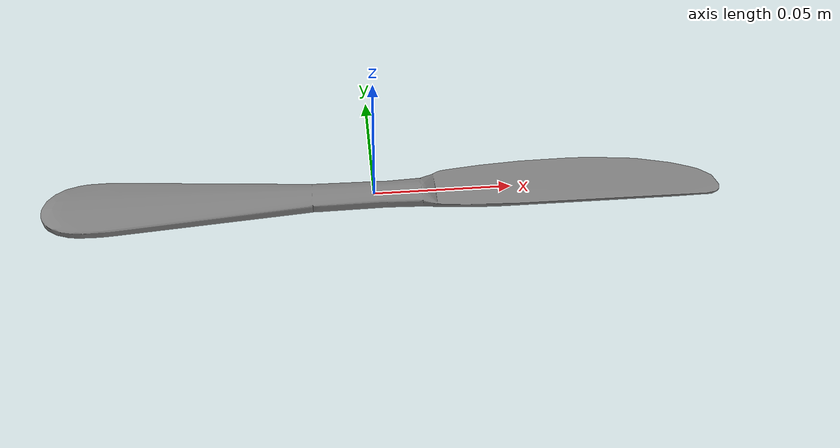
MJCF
<mujoco model="knife_CommonCutlery12Pieces_vk0074_DessertKnife_subd1_M">
  <default>
    <default class="visual">
      <geom group="2" type="mesh" contype="0" conaffinity="0" />
    </default>
    <default class="collision">
      <geom group="3" type="mesh" />
    </default>
  </default>
  <asset>
    <mesh file="knife_CommonCutlery12Pieces_vk0074_DessertKnife_subd1_M.stl" />
    <mesh file="knife_CommonCutlery12Pieces_vk0074_DessertKnife_subd1_M_collision_0.stl" />
    <mesh file="knife_CommonCutlery12Pieces_vk0074_DessertKnife_subd1_M_collision_1.stl" />
    <mesh file="knife_CommonCutlery12Pieces_vk0074_DessertKnife_subd1_M_collision_2.stl" />
    <mesh file="knife_CommonCutlery12Pieces_vk0074_DessertKnife_subd1_M_collision_3.stl" />
    <mesh file="knife_CommonCutlery12Pieces_vk0074_DessertKnife_subd1_M_collision_4.stl" />
    <mesh file="knife_CommonCutlery12Pieces_vk0074_DessertKnife_subd1_M_collision_5.stl" />
    <mesh file="knife_CommonCutlery12Pieces_vk0074_DessertKnife_subd1_M_collision_6.stl" />
    <mesh file="knife_CommonCutlery12Pieces_vk0074_DessertKnife_subd1_M_collision_7.stl" />
    <mesh file="knife_CommonCutlery12Pieces_vk0074_DessertKnife_subd1_M_collision_8.stl" />
    <mesh file="knife_CommonCutlery12Pieces_vk0074_DessertKnife_subd1_M_collision_9.stl" />
    <mesh file="knife_CommonCutlery12Pieces_vk0074_DessertKnife_subd1_M_collision_10.stl" />
    <mesh file="knife_CommonCutlery12Pieces_vk0074_DessertKnife_subd1_M_collision_11.stl" />
    <mesh file="knife_CommonCutlery12Pieces_vk0074_DessertKnife_subd1_M_collision_12.stl" />
    <mesh file="knife_CommonCutlery12Pieces_vk0074_DessertKnife_subd1_M_collision_13.stl" />
    <mesh file="knife_CommonCutlery12Pieces_vk0074_DessertKnife_subd1_M_collision_14.stl" />
    <mesh file="knife_CommonCutlery12Pieces_vk0074_DessertKnife_subd1_M_collision_15.stl" />
  </asset>
  <worldbody>
    <body name="knife_CommonCutlery12Pieces_vk0074_DessertKnife_subd1_M">
      <geom mesh="knife_CommonCutlery12Pieces_vk0074_DessertKnife_subd1_M" class="visual" />
      <geom mesh="knife_CommonCutlery12Pieces_vk0074_DessertKnife_subd1_M_collision_0" class="collision" />
      <geom mesh="knife_CommonCutlery12Pieces_vk0074_DessertKnife_subd1_M_collision_1" class="collision" />
      <geom mesh="knife_CommonCutlery12Pieces_vk0074_DessertKnife_subd1_M_collision_2" class="collision" />
      <geom mesh="knife_CommonCutlery12Pieces_vk0074_DessertKnife_subd1_M_collision_3" class="collision" />
      <geom mesh="knife_CommonCutlery12Pieces_vk0074_DessertKnife_subd1_M_collision_4" class="collision" />
      <geom mesh="knife_CommonCutlery12Pieces_vk0074_DessertKnife_subd1_M_collision_5" class="collision" />
      <geom mesh="knife_CommonCutlery12Pieces_vk0074_DessertKnife_subd1_M_collision_6" class="collision" />
      <geom mesh="knife_CommonCutlery12Pieces_vk0074_DessertKnife_subd1_M_collision_7" class="collision" />
      <geom mesh="knife_CommonCutlery12Pieces_vk0074_DessertKnife_subd1_M_collision_8" class="collision" />
      <geom mesh="knife_CommonCutlery12Pieces_vk0074_DessertKnife_subd1_M_collision_9" class="collision" />
      <geom mesh="knife_CommonCutlery12Pieces_vk0074_DessertKnife_subd1_M_collision_10" class="collision" />
      <geom mesh="knife_CommonCutlery12Pieces_vk0074_DessertKnife_subd1_M_collision_11" class="collision" />
      <geom mesh="knife_CommonCutlery12Pieces_vk0074_DessertKnife_subd1_M_collision_12" class="collision" />
      <geom mesh="knife_CommonCutlery12Pieces_vk0074_DessertKnife_subd1_M_collision_13" class="collision" />
      <geom mesh="knife_CommonCutlery12Pieces_vk0074_DessertKnife_subd1_M_collision_14" class="collision" />
      <geom mesh="knife_CommonCutlery12Pieces_vk0074_DessertKnife_subd1_M_collision_15" class="collision" />
    </body>
  </worldbody>
</mujoco>
